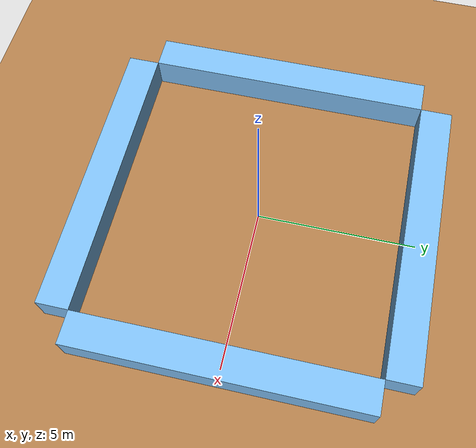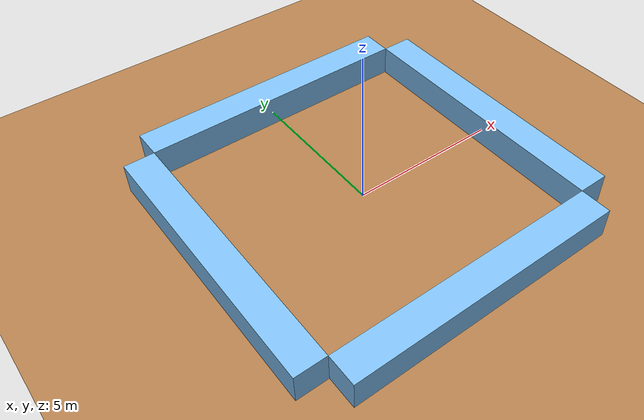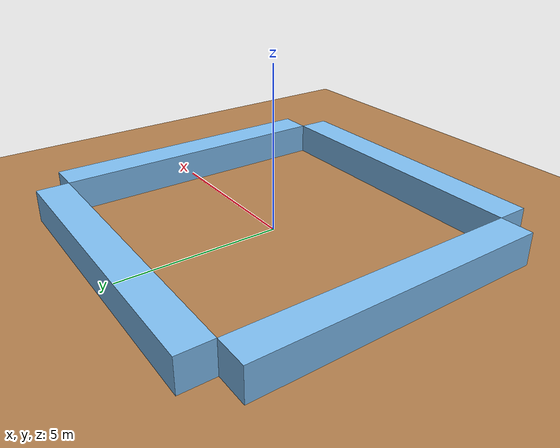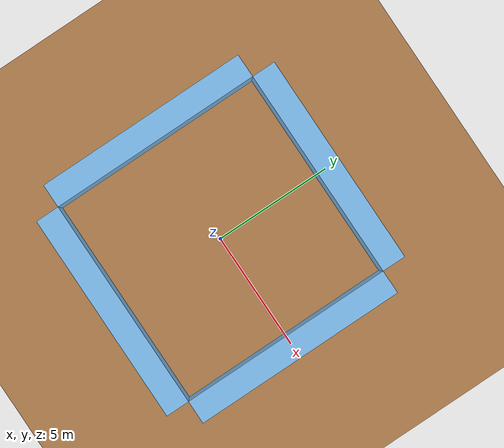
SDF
<?xml version="1.0"?>
<sdf version='1.4'>
    <world name='default'>
        <!-- il inclut le soleil dans le world-->
        <include>
            <uri>model://sun</uri>
        </include>

        <!--modification des spécificités visuel de l'environnement-->
        <scene>
            <!--modification de la lumière ambiente-->
            <ambient>0.5 0.5 0.5 1</ambient>
            <!--modification de la couleur de l'arrière plan-->
            <background>0.0 0.0 0.1 1</background>
            <!--désactivation des ombres-->
            <shadows>0</shadows>
        </scene>

        <!-- création de la salle-->
        <model name='salle'>
            <!-- rend la salle statique-->
            <static>1</static>
            <!--création 1er mur-->
            <link name='mur1'>
                <visual name='visual'>
                    <pose>0 5 0.5 0 0 0</pose>
                    <geometry>
                        <box>
                            <size>9 1 1</size>
                        </box>
                    </geometry>
                    <material>
                        <script>
                            <!--affichage du mur en bleu-->
                            <uri>file://media/materials/scripts/gazebo.material</uri>
                            <name>Gazebo/SkyBlue</name>
                        </script>
                    </material>
                </visual>
                <!--paramètrage de la collision-->
                <collision name='collision'>
                    <pose>0 5 0.5 0 0 0</pose>
                    <geometry>
                        <box>
                            <size>9 1 1</size>
                        </box>
                    </geometry>
                </collision>
            </link>
            <!--création 2eme mur-->
            <link name='mur2'>
                <visual name='visual'>
                    <pose>0 -5 0.5 0 0 0</pose>
                    <geometry>
                        <box>
                            <size>9 1 1</size>
                        </box>
                    </geometry>
                    <material>
                        <script>
                            <!--affichage du mur en bleu-->
                            <uri>file://media/materials/scripts/gazebo.material</uri>
                            <name>Gazebo/SkyBlue</name>
                        </script>
                    </material>
                </visual>
                <!--paramètrage de la collision-->
                <collision name='collision'>
                    <pose>0 -5 0.5 0 0 0</pose>
                    <geometry>
                        <box>
                            <size>9 1 1</size>
                        </box>
                    </geometry>
                </collision>
            </link>
            <!--création 3eme mur-->
            <link name='mur3'>
                <visual name='visual'>
                    <pose>5 0 0.5 0 0 0</pose>
                    <geometry>
                        <box>
                            <size>1 9 1</size>
                        </box>
                    </geometry>
                    <material>
                        <script>
                            <!--affichage du mur en bleu-->
                            <uri>file://media/materials/scripts/gazebo.material</uri>
                            <name>Gazebo/SkyBlue</name>
                        </script>
                    </material>
                </visual>
                <!--paramètrage de la collision-->
                <collision name='collision'>
                    <pose>5 0 0.5 0 0 0</pose>
                    <geometry>
                        <box>
                            <size>1 9 1</size>
                        </box>
                    </geometry>
                </collision>
            </link>
            <!--création 4eme mur-->
            <link name='mur4'>
                <visual name='visual'>
                    <pose>-5 0 0.5 0 0 0</pose>
                    <geometry>
                        <box>
                            <size>1 9 1</size>
                        </box>
                    </geometry>
                    <material>
                        <script>
                            <!--affichage du mur en bleu-->
                            <uri>file://media/materials/scripts/gazebo.material</uri>
                            <name>Gazebo/SkyBlue</name>
                        </script>
                    </material>
                </visual>
                <!--paramètrage de la collision-->
                <collision name='collision'>
                    <pose>-5 0 0.5 0 0 0</pose>
                    <geometry>
                        <box>
                            <size>1 9 1</size>
                        </box>
                    </geometry>
                </collision>
            </link>
        </model>

        <!--création du sol-->
        <model name='ground_plane'>
            <static>1</static>
            <link name='link'>
                <collision name='collision'>
                    <geometry>
                        <plane>
                            <normal>0 0 1</normal>
                            <size>10 10</size>
                        </plane>
                    </geometry>
                    <surface>
                        <!--paramètrage des coefficients de frottrment-->
                        <friction>
                            <ode>
                                <mu>100</mu>
                                <mu2>50</mu2>
                            </ode>
                        </friction>
                    </surface>
                    <!--nombre de contact maximum autorisée-->
                    <max_contacts>10</max_contacts>
                </collision>
                <visual name='visual'>
                    <geometry>
                        <plane>
                            <normal>0 0 1</normal>
                            <size>10 10</size>
                        </plane>
                    </geometry>
                    <material>
                        <script>
                            <!--affichage d'un sol en parket-->
                            <uri>file://media/materials/scripts/gazebo.material</uri>
                            <name>Gazebo/Wood</name>
                        </script>
                    </material>
                </visual>
                <!--activation de la gravité-->
                <gravity>1</gravity>
            </link>
        </model>
    </world>
</sdf>
